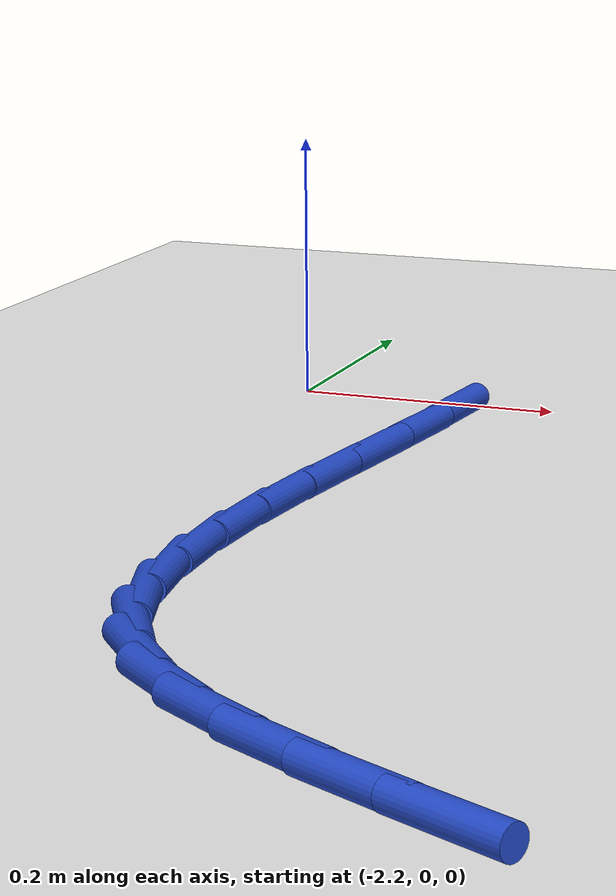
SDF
<sdf version="1.6">
 <world name="default">
  <model name="ground_plane">
   <static>1</static>
   <link name="link">
    <collision name="collision">
     <geometry><plane><normal>0 0 1</normal><size>100 100</size></plane></geometry>
     <surface><friction><ode><mu>100</mu><mu2>50</mu2></ode></friction></surface>
    </collision>
    <visual name="visual">
     <cast_shadows>0</cast_shadows>
     <geometry><plane><normal>0 0 1</normal><size>100 100</size></plane></geometry>
     <material>
      <script><uri>file://media/materials/scripts/gazebo.material</uri><name>Gazebo/WhiteGlow</name></script>
     </material>
    </visual>
   </link>
  </model>
  <model name="line">
   <link name="link_61">
    <pose>-2.0613551892354756 -0.046953505838964606 0.01 0 1.57 1.4728696927132732</pose>
    <collision name="collision">
     <geometry><cylinder><radius>0.01</radius><length>0.08</length></cylinder></geometry>
    </collision>
    <visual name="visual">
     <material>
      <script><name>Gazebo/Blue</name><uri>file://media/materials/scripts/gazebo.material</uri></script>
     </material>
     <geometry><cylinder><radius>0.01</radius><length>0.08</length></cylinder></geometry>
    </visual>
   </link>
   <link name="link_62">
    <pose>-2.068055057300316 -0.11515188735545084 0.01 0 1.57 1.44795541972647</pose>
    <collision name="collision">
     <geometry><cylinder><radius>0.01</radius><length>0.08</length></cylinder></geometry>
    </collision>
    <visual name="visual">
     <material>
      <script><name>Gazebo/Blue</name><uri>file://media/materials/scripts/gazebo.material</uri></script>
     </material>
     <geometry><cylinder><radius>0.01</radius><length>0.08</length></cylinder></geometry>
    </visual>
   </link>
   <link name="link_63">
    <pose>-2.076347698472591 -0.18231915004018673 0.01 0 1.57 1.43979682144036</pose>
    <collision name="collision">
     <geometry><cylinder><radius>0.01</radius><length>0.08</length></cylinder></geometry>
    </collision>
    <visual name="visual">
     <material>
      <script><name>Gazebo/Blue</name><uri>file://media/materials/scripts/gazebo.material</uri></script>
     </material>
     <geometry><cylinder><radius>0.01</radius><length>0.08</length></cylinder></geometry>
    </visual>
   </link>
   <link name="link_64">
    <pose>-2.084997872727864 -0.24797310822230734 0.01 0 1.57 1.4493013138001636</pose>
    <collision name="collision">
     <geometry><cylinder><radius>0.01</radius><length>0.08</length></cylinder></geometry>
    </collision>
    <visual name="visual">
     <material>
      <script><name>Gazebo/Blue</name><uri>file://media/materials/scripts/gazebo.material</uri></script>
     </material>
     <geometry><cylinder><radius>0.01</radius><length>0.08</length></cylinder></geometry>
    </visual>
   </link>
   <link name="link_65">
    <pose>-2.0927703400416986 -0.3116315762309503 0.01 0 1.57 1.4785539838935946</pose>
    <collision name="collision">
     <geometry><cylinder><radius>0.01</radius><length>0.08</length></cylinder></geometry>
    </collision>
    <visual name="visual">
     <material>
      <script><name>Gazebo/Blue</name><uri>file://media/materials/scripts/gazebo.material</uri></script>
     </material>
     <geometry><cylinder><radius>0.01</radius><length>0.08</length></cylinder></geometry>
    </visual>
   </link>
   <link name="link_66">
    <pose>-2.0984298603896576 -0.3728123683952531 0.01 0 1.57 1.5311178086310455</pose>
    <collision name="collision">
     <geometry><cylinder><radius>0.01</radius><length>0.08</length></cylinder></geometry>
    </collision>
    <visual name="visual">
     <material>
      <script><name>Gazebo/Blue</name><uri>file://media/materials/scripts/gazebo.material</uri></script>
     </material>
     <geometry><cylinder><radius>0.01</radius><length>0.08</length></cylinder></geometry>
    </visual>
   </link>
   <link name="link_67">
    <pose>-2.100741193747304 -0.43103329904435095 0.01 0 1.57 -1.5293425421089135</pose>
    <collision name="collision">
     <geometry><cylinder><radius>0.01</radius><length>0.08</length></cylinder></geometry>
    </collision>
    <visual name="visual">
     <material>
      <script><name>Gazebo/Blue</name><uri>file://media/materials/scripts/gazebo.material</uri></script>
     </material>
     <geometry><cylinder><radius>0.01</radius><length>0.08</length></cylinder></geometry>
    </visual>
   </link>
   <link name="link_68">
    <pose>-2.098469100090202 -0.48581218250738134 0.01 0 1.57 -1.4130228310244535</pose>
    <collision name="collision">
     <geometry><cylinder><radius>0.01</radius><length>0.08</length></cylinder></geometry>
    </collision>
    <visual name="visual">
     <material>
      <script><name>Gazebo/Blue</name><uri>file://media/materials/scripts/gazebo.material</uri></script>
     </material>
     <geometry><cylinder><radius>0.01</radius><length>0.08</length></cylinder></geometry>
    </visual>
   </link>
   <link name="link_69">
    <pose>-2.0903783393939133 -0.5366668331134808 0.01 0 1.57 -1.255610717723429</pose>
    <collision name="collision">
     <geometry><cylinder><radius>0.01</radius><length>0.08</length></cylinder></geometry>
    </collision>
    <visual name="visual">
     <material>
      <script><name>Gazebo/Blue</name><uri>file://media/materials/scripts/gazebo.material</uri></script>
     </material>
     <geometry><cylinder><radius>0.01</radius><length>0.08</length></cylinder></geometry>
    </visual>
   </link>
   <link name="link_70">
    <pose>-2.0752336716340016 -0.583115065191787 0.01 0 1.57 -1.0574557231638746</pose>
    <collision name="collision">
     <geometry><cylinder><radius>0.01</radius><length>0.08</length></cylinder></geometry>
    </collision>
    <visual name="visual">
     <material>
      <script><name>Gazebo/Blue</name><uri>file://media/materials/scripts/gazebo.material</uri></script>
     </material>
     <geometry><cylinder><radius>0.01</radius><length>0.08</length></cylinder></geometry>
    </visual>
   </link>
   <link name="link_71">
    <pose>-2.0518031467800824 -0.6246767682081626 0.01 0 1.57 -0.8489554780245492</pose>
    <collision name="collision">
     <geometry><cylinder><radius>0.01</radius><length>0.08</length></cylinder></geometry>
    </collision>
    <visual name="visual">
     <material>
      <script><name>Gazebo/Blue</name><uri>file://media/materials/scripts/gazebo.material</uri></script>
     </material>
     <geometry><cylinder><radius>0.01</radius><length>0.08</length></cylinder></geometry>
    </visual>
   </link>
   <link name="link_72">
    <pose>-2.019552272402092 -0.6613117472817932 0.01 0 1.57 -0.6839576242369139</pose>
    <collision name="collision">
     <geometry><cylinder><radius>0.01</radius><length>0.08</length></cylinder></geometry>
    </collision>
    <visual name="visual">
     <material>
      <script><name>Gazebo/Blue</name><uri>file://media/materials/scripts/gazebo.material</uri></script>
     </material>
     <geometry><cylinder><radius>0.01</radius><length>0.08</length></cylinder></geometry>
    </visual>
   </link>
   <link name="link_73">
    <pose>-1.9795026657125954 -0.6939613109089228 0.01 0 1.57 -0.5678494866769065</pose>
    <collision name="collision">
     <geometry><cylinder><radius>0.01</radius><length>0.08</length></cylinder></geometry>
    </collision>
    <visual name="visual">
     <material>
      <script><name>Gazebo/Blue</name><uri>file://media/materials/scripts/gazebo.material</uri></script>
     </material>
     <geometry><cylinder><radius>0.01</radius><length>0.08</length></cylinder></geometry>
    </visual>
   </link>
   <link name="link_74">
    <pose>-1.9328864941485937 -0.7236995704106528 0.01 0 1.57 -0.4928616014711289</pose>
    <collision name="collision">
     <geometry><cylinder><radius>0.01</radius><length>0.08</length></cylinder></geometry>
    </collision>
    <visual name="visual">
     <material>
      <script><name>Gazebo/Blue</name><uri>file://media/materials/scripts/gazebo.material</uri></script>
     </material>
     <geometry><cylinder><radius>0.01</radius><length>0.08</length></cylinder></geometry>
    </visual>
   </link>
   <link name="link_75">
    <pose>-1.8809359251470918 -0.7516006371080837 0.01 0 1.57 -0.45088772376823494</pose>
    <collision name="collision">
     <geometry><cylinder><radius>0.01</radius><length>0.08</length></cylinder></geometry>
    </collision>
    <visual name="visual">
     <material>
      <script><name>Gazebo/Blue</name><uri>file://media/materials/scripts/gazebo.material</uri></script>
     </material>
     <geometry><cylinder><radius>0.01</radius><length>0.08</length></cylinder></geometry>
    </visual>
   </link>
   <link name="link_76">
    <pose>-1.8248831261450902 -0.7787386223223162 0.01 0 1.57 -0.4359535404101338</pose>
    <collision name="collision">
     <geometry><cylinder><radius>0.01</radius><length>0.08</length></cylinder></geometry>
    </collision>
    <visual name="visual">
     <material>
      <script><name>Gazebo/Blue</name><uri>file://media/materials/scripts/gazebo.material</uri></script>
     </material>
     <geometry><cylinder><radius>0.01</radius><length>0.08</length></cylinder></geometry>
    </visual>
   </link>
  </model>
 </world>
</sdf>
